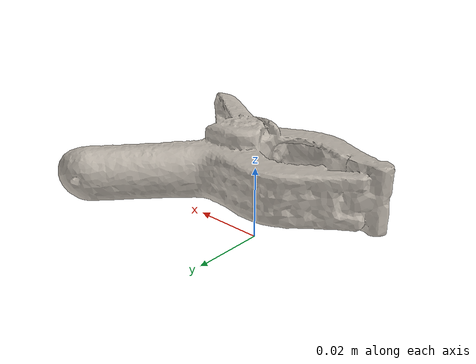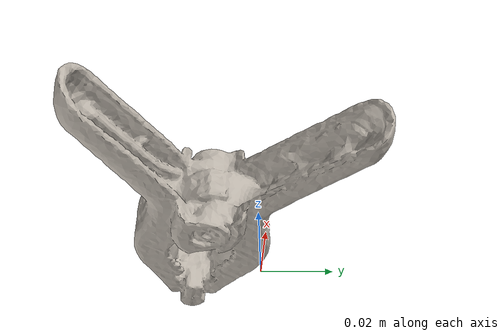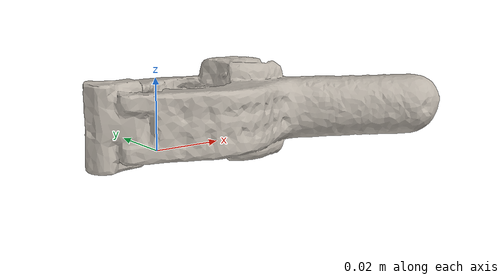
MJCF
<mujoco model="medium_clamp">
  <compiler angle="radian" meshdir="assets" texturedir="assets"/>
    <default>
        <default class="ycb_col">
            <geom contype="1" conaffinity="1" group="3" rgba=".4 .5 .6 1"/>
        </default>
        <default class="ycb_viz">
            <geom contype="0" conaffinity="0" type="mesh" mass="0"/>
        </default>
    </default>
  <asset>
    <texture type="2d" name="medium_clamp_tex" file="texture_map.png"/>
    <material name="medium_clamp_mat" texture="medium_clamp_tex" specular="0.5" shininess="0.5"/>
    <mesh file="textured.obj" name="medium_clamp"/>
    <mesh file="textured_collision_0.obj" name="medium_clamp_collision_0"/>
    <mesh file="textured_collision_1.obj" name="medium_clamp_collision_1"/>
    <mesh file="textured_collision_2.obj" name="medium_clamp_collision_2"/>
    <mesh file="textured_collision_3.obj" name="medium_clamp_collision_3"/>
    <mesh file="textured_collision_4.obj" name="medium_clamp_collision_4"/>
    <mesh file="textured_collision_5.obj" name="medium_clamp_collision_5"/>
    <mesh file="textured_collision_6.obj" name="medium_clamp_collision_6"/>
    <mesh file="textured_collision_7.obj" name="medium_clamp_collision_7"/>
    <mesh file="textured_collision_8.obj" name="medium_clamp_collision_8"/>
    <mesh file="textured_collision_9.obj" name="medium_clamp_collision_9"/>
    <mesh file="textured_collision_10.obj" name="medium_clamp_collision_10"/>
    <mesh file="textured_collision_11.obj" name="medium_clamp_collision_11"/>
    <mesh file="textured_collision_12.obj" name="medium_clamp_collision_12"/>
    <mesh file="textured_collision_13.obj" name="medium_clamp_collision_13"/>
    <mesh file="textured_collision_14.obj" name="medium_clamp_collision_14"/>
    <mesh file="textured_collision_15.obj" name="medium_clamp_collision_15"/>
    <mesh file="textured_collision_16.obj" name="medium_clamp_collision_16"/>
    <mesh file="textured_collision_17.obj" name="medium_clamp_collision_17"/>
    <mesh file="textured_collision_18.obj" name="medium_clamp_collision_18"/>
    <mesh file="textured_collision_19.obj" name="medium_clamp_collision_19"/>
    <mesh file="textured_collision_20.obj" name="medium_clamp_collision_20"/>
    <mesh file="textured_collision_21.obj" name="medium_clamp_collision_21"/>
    <mesh file="textured_collision_22.obj" name="medium_clamp_collision_22"/>
    <mesh file="textured_collision_23.obj" name="medium_clamp_collision_23"/>
    <mesh file="textured_collision_24.obj" name="medium_clamp_collision_24"/>
    <mesh file="textured_collision_25.obj" name="medium_clamp_collision_25"/>
    <mesh file="textured_collision_26.obj" name="medium_clamp_collision_26"/>
    <mesh file="textured_collision_27.obj" name="medium_clamp_collision_27"/>
    <mesh file="textured_collision_28.obj" name="medium_clamp_collision_28"/>
    <mesh file="textured_collision_29.obj" name="medium_clamp_collision_29"/>
    <mesh file="textured_collision_30.obj" name="medium_clamp_collision_30"/>
    <mesh file="textured_collision_31.obj" name="medium_clamp_collision_31"/>
    <mesh file="textured_collision_32.obj" name="medium_clamp_collision_32"/>
    <mesh file="textured_collision_33.obj" name="medium_clamp_collision_33"/>
    <mesh file="textured_collision_34.obj" name="medium_clamp_collision_34"/>
  </asset>
  <worldbody>
      <geom material="medium_clamp_mat" mesh="medium_clamp" class="ycb_viz"/>
      <geom mesh="medium_clamp_collision_0" class="ycb_col" conaffinity="1" condim="4" friction="0.1 0.1 0.1" mass="0.0021194767529426973" rgba="1 1 1 1" solimp="0.99 0.99 0.01" solref=".001 0.1" type="mesh" group="3"/>
      <geom mesh="medium_clamp_collision_1" class="ycb_col" conaffinity="1" condim="4" friction="0.1 0.1 0.1" mass="0.005526869401617637" rgba="1 1 1 1" solimp="0.99 0.99 0.01" solref=".001 0.1" type="mesh" group="3"/>
      <geom mesh="medium_clamp_collision_2" class="ycb_col" conaffinity="1" condim="4" friction="0.1 0.1 0.1" mass="0.001992947821355355" rgba="1 1 1 1" solimp="0.99 0.99 0.01" solref=".001 0.1" type="mesh" group="3"/>
      <geom mesh="medium_clamp_collision_3" class="ycb_col" conaffinity="1" condim="4" friction="0.1 0.1 0.1" mass="0.00028085285762468075" rgba="1 1 1 1" solimp="0.99 0.99 0.01" solref=".001 0.1" type="mesh" group="3"/>
      <geom mesh="medium_clamp_collision_4" class="ycb_col" conaffinity="1" condim="4" friction="0.1 0.1 0.1" mass="0.00026698295493101043" rgba="1 1 1 1" solimp="0.99 0.99 0.01" solref=".001 0.1" type="mesh" group="3"/>
      <geom mesh="medium_clamp_collision_5" class="ycb_col" conaffinity="1" condim="4" friction="0.1 0.1 0.1" mass="0.0010138167620279506" rgba="1 1 1 1" solimp="0.99 0.99 0.01" solref=".001 0.1" type="mesh" group="3"/>
      <geom mesh="medium_clamp_collision_6" class="ycb_col" conaffinity="1" condim="4" friction="0.1 0.1 0.1" mass="0.001337824752795194" rgba="1 1 1 1" solimp="0.99 0.99 0.01" solref=".001 0.1" type="mesh" group="3"/>
      <geom mesh="medium_clamp_collision_7" class="ycb_col" conaffinity="1" condim="4" friction="0.1 0.1 0.1" mass="0.000673960617648921" rgba="1 1 1 1" solimp="0.99 0.99 0.01" solref=".001 0.1" type="mesh" group="3"/>
      <geom mesh="medium_clamp_collision_8" class="ycb_col" conaffinity="1" condim="4" friction="0.1 0.1 0.1" mass="0.0014746765468438734" rgba="1 1 1 1" solimp="0.99 0.99 0.01" solref=".001 0.1" type="mesh" group="3"/>
      <geom mesh="medium_clamp_collision_9" class="ycb_col" conaffinity="1" condim="4" friction="0.1 0.1 0.1" mass="0.006507213073846669" rgba="1 1 1 1" solimp="0.99 0.99 0.01" solref=".001 0.1" type="mesh" group="3"/>
      <geom mesh="medium_clamp_collision_10" class="ycb_col" conaffinity="1" condim="4" friction="0.1 0.1 0.1" mass="0.00645855448835397" rgba="1 1 1 1" solimp="0.99 0.99 0.01" solref=".001 0.1" type="mesh" group="3"/>
      <geom mesh="medium_clamp_collision_11" class="ycb_col" conaffinity="1" condim="4" friction="0.1 0.1 0.1" mass="0.004695243078540421" rgba="1 1 1 1" solimp="0.99 0.99 0.01" solref=".001 0.1" type="mesh" group="3"/>
      <geom mesh="medium_clamp_collision_12" class="ycb_col" conaffinity="1" condim="4" friction="0.1 0.1 0.1" mass="0.0013487003421464772" rgba="1 1 1 1" solimp="0.99 0.99 0.01" solref=".001 0.1" type="mesh" group="3"/>
      <geom mesh="medium_clamp_collision_13" class="ycb_col" conaffinity="1" condim="4" friction="0.1 0.1 0.1" mass="0.002470486466140631" rgba="1 1 1 1" solimp="0.99 0.99 0.01" solref=".001 0.1" type="mesh" group="3"/>
      <geom mesh="medium_clamp_collision_14" class="ycb_col" conaffinity="1" condim="4" friction="0.1 0.1 0.1" mass="0.0009472838029666973" rgba="1 1 1 1" solimp="0.99 0.99 0.01" solref=".001 0.1" type="mesh" group="3"/>
      <geom mesh="medium_clamp_collision_15" class="ycb_col" conaffinity="1" condim="4" friction="0.1 0.1 0.1" mass="0.0017984141904059414" rgba="1 1 1 1" solimp="0.99 0.99 0.01" solref=".001 0.1" type="mesh" group="3"/>
      <geom mesh="medium_clamp_collision_16" class="ycb_col" conaffinity="1" condim="4" friction="0.1 0.1 0.1" mass="0.0009820652287490913" rgba="1 1 1 1" solimp="0.99 0.99 0.01" solref=".001 0.1" type="mesh" group="3"/>
      <geom mesh="medium_clamp_collision_17" class="ycb_col" conaffinity="1" condim="4" friction="0.1 0.1 0.1" mass="0.00024116213207987192" rgba="1 1 1 1" solimp="0.99 0.99 0.01" solref=".001 0.1" type="mesh" group="3"/>
      <geom mesh="medium_clamp_collision_18" class="ycb_col" conaffinity="1" condim="4" friction="0.1 0.1 0.1" mass="0.0010900254097225897" rgba="1 1 1 1" solimp="0.99 0.99 0.01" solref=".001 0.1" type="mesh" group="3"/>
      <geom mesh="medium_clamp_collision_19" class="ycb_col" conaffinity="1" condim="4" friction="0.1 0.1 0.1" mass="0.0008258631647032821" rgba="1 1 1 1" solimp="0.99 0.99 0.01" solref=".001 0.1" type="mesh" group="3"/>
      <geom mesh="medium_clamp_collision_20" class="ycb_col" conaffinity="1" condim="4" friction="0.1 0.1 0.1" mass="0.0010481141792877727" rgba="1 1 1 1" solimp="0.99 0.99 0.01" solref=".001 0.1" type="mesh" group="3"/>
      <geom mesh="medium_clamp_collision_21" class="ycb_col" conaffinity="1" condim="4" friction="0.1 0.1 0.1" mass="0.001481632444325557" rgba="1 1 1 1" solimp="0.99 0.99 0.01" solref=".001 0.1" type="mesh" group="3"/>
      <geom mesh="medium_clamp_collision_22" class="ycb_col" conaffinity="1" condim="4" friction="0.1 0.1 0.1" mass="0.0014880728625331163" rgba="1 1 1 1" solimp="0.99 0.99 0.01" solref=".001 0.1" type="mesh" group="3"/>
      <geom mesh="medium_clamp_collision_23" class="ycb_col" conaffinity="1" condim="4" friction="0.1 0.1 0.1" mass="0.00023978799023555706" rgba="1 1 1 1" solimp="0.99 0.99 0.01" solref=".001 0.1" type="mesh" group="3"/>
      <geom mesh="medium_clamp_collision_24" class="ycb_col" conaffinity="1" condim="4" friction="0.1 0.1 0.1" mass="0.00034183190916489974" rgba="1 1 1 1" solimp="0.99 0.99 0.01" solref=".001 0.1" type="mesh" group="3"/>
      <geom mesh="medium_clamp_collision_25" class="ycb_col" conaffinity="1" condim="4" friction="0.1 0.1 0.1" mass="0.0006638988806855307" rgba="1 1 1 1" solimp="0.99 0.99 0.01" solref=".001 0.1" type="mesh" group="3"/>
      <geom mesh="medium_clamp_collision_26" class="ycb_col" conaffinity="1" condim="4" friction="0.1 0.1 0.1" mass="0.0014669395202477383" rgba="1 1 1 1" solimp="0.99 0.99 0.01" solref=".001 0.1" type="mesh" group="3"/>
      <geom mesh="medium_clamp_collision_27" class="ycb_col" conaffinity="1" condim="4" friction="0.1 0.1 0.1" mass="0.0006022846433041286" rgba="1 1 1 1" solimp="0.99 0.99 0.01" solref=".001 0.1" type="mesh" group="3"/>
      <geom mesh="medium_clamp_collision_28" class="ycb_col" conaffinity="1" condim="4" friction="0.1 0.1 0.1" mass="0.0017557788171716007" rgba="1 1 1 1" solimp="0.99 0.99 0.01" solref=".001 0.1" type="mesh" group="3"/>
      <geom mesh="medium_clamp_collision_29" class="ycb_col" conaffinity="1" condim="4" friction="0.1 0.1 0.1" mass="0.0007764114373132502" rgba="1 1 1 1" solimp="0.99 0.99 0.01" solref=".001 0.1" type="mesh" group="3"/>
      <geom mesh="medium_clamp_collision_30" class="ycb_col" conaffinity="1" condim="4" friction="0.1 0.1 0.1" mass="0.0021599495319625543" rgba="1 1 1 1" solimp="0.99 0.99 0.01" solref=".001 0.1" type="mesh" group="3"/>
      <geom mesh="medium_clamp_collision_31" class="ycb_col" conaffinity="1" condim="4" friction="0.1 0.1 0.1" mass="0.0005617713252197927" rgba="1 1 1 1" solimp="0.99 0.99 0.01" solref=".001 0.1" type="mesh" group="3"/>
      <geom mesh="medium_clamp_collision_32" class="ycb_col" conaffinity="1" condim="4" friction="0.1 0.1 0.1" mass="0.0026304268122768044" rgba="1 1 1 1" solimp="0.99 0.99 0.01" solref=".001 0.1" type="mesh" group="3"/>
      <geom mesh="medium_clamp_collision_33" class="ycb_col" conaffinity="1" condim="4" friction="0.1 0.1 0.1" mass="0.0012034074175407597" rgba="1 1 1 1" solimp="0.99 0.99 0.01" solref=".001 0.1" type="mesh" group="3"/>
      <geom mesh="medium_clamp_collision_34" class="ycb_col" conaffinity="1" condim="4" friction="0.1 0.1 0.1" mass="0.0005272723832879703" rgba="1 1 1 1" solimp="0.99 0.99 0.01" solref=".001 0.1" type="mesh" group="3"/>
  </worldbody>
</mujoco>
